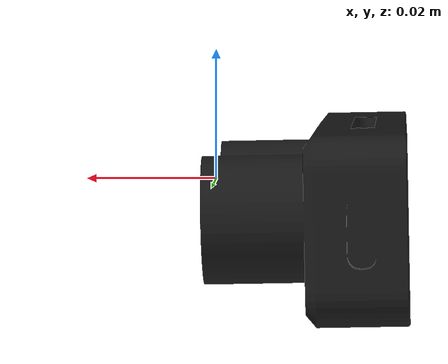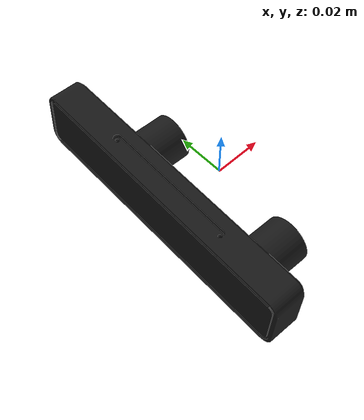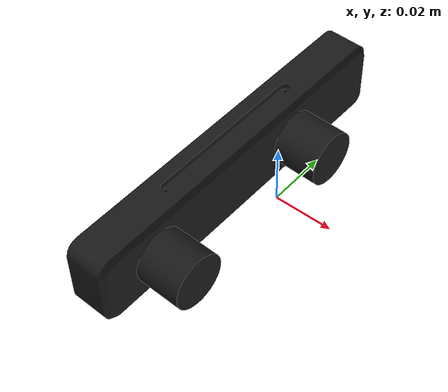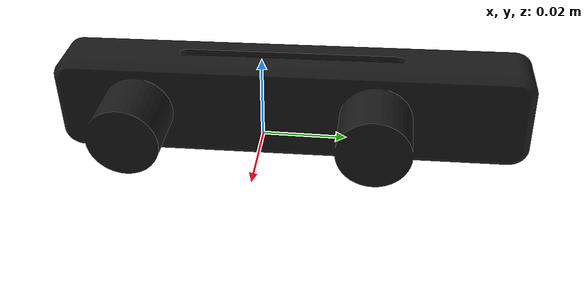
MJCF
<mujoco model="zed_mini">
  <compiler angle="radian" meshdir="assets" autolimits="true"/>

  <option cone="elliptic" impratio="10"/>

  <asset>
    <material name="gray" rgba="0.8 0.8 0.8 1"/>
    <material name="black" rgba="0.1 0.1 0.1 1"/>
    <mesh name="zed_mini" file="zed_mini.obj"/>
    <mesh name="zed_mini_coll" file="zed_mini.stl"/>
  </asset>

  <default>
    <default class="zed_mini">
      <default class="visual">
        <geom type="mesh" contype="0" conaffinity="0" group="2" material="black"/>
      </default>
      <default class="collision">
        <geom type="mesh" group="3"/>
      </default>
    </default>
  </default>

  <worldbody>
    <body name="zed_mini" childclass="zed_mini">
      <geom mesh="zed_mini" pos="-0.029645 0.002464 -0.004295" quat="0.999847 0.011973 0.010415 -0.00733" material="black" class="visual" mass="0"/>
      <!-- Real measured mass 56.9 g; COM/inertia derived from the mesh at this mass. -->
      <geom mesh="zed_mini_coll" pos="-0.029645 0.002464 -0.004295" quat="0.999847 0.011973 0.010415 -0.00733" material="black" class="collision" mass="0.0569"/>
<!-- intrinsic matrix from real camera (serial 14943057, ZED_M, 1280x720) -->

      <camera name="camera" pos="0 0.0255 0" quat="0.5 0.5 -0.5 -0.5"
              resolution="1280 720" sensorsize="0.005325 0.0029953"
              focalpixel="740.23132324 740.23132324" principalpixel="37.4699097 2.8115540"/>
    </body>
  </worldbody>

</mujoco>
